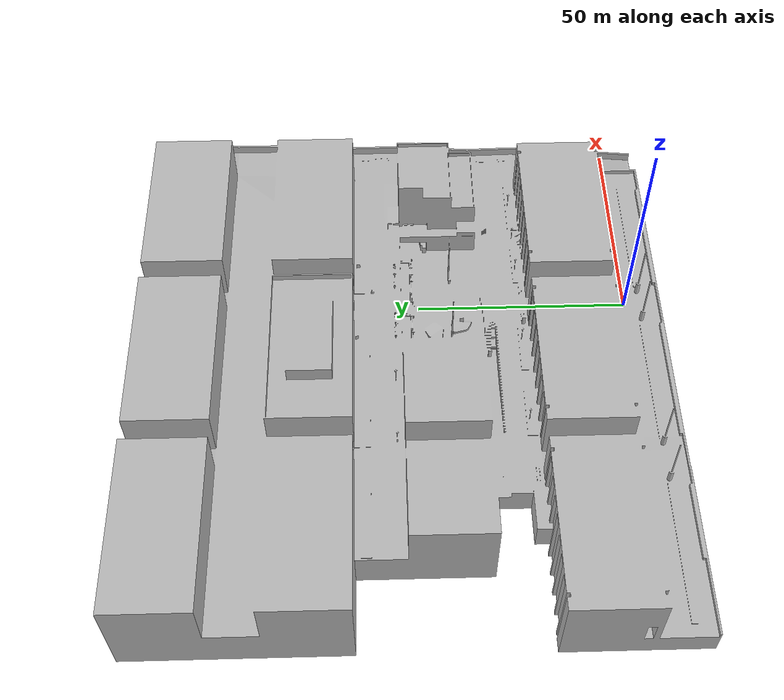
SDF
<?xml version="1.0" ?>
<sdf version="1.4">
  <world name="brl">
    <include>
      <uri>model://sun</uri>
    </include>
    <include>
      <uri>model://brl_big</uri>
      <name>brl_big</name>
      <pose>0 0 0 0 0 0</pose>
    </include>
  </world>
</sdf>

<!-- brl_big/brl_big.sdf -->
<sdf version="1.4">
  <model name="brl_big">
    <static>true</static>
    <link name="link">
      <pose>0 0 0 0 0 0</pose>
      <collision name="collision">
        <geometry>
          <mesh>
            <uri>model://brl_big/meshes/brl_big.stl</uri>
            <scale>1 1 1</scale>
          </mesh>
        </geometry>
      </collision>
      <visual name="visual">
        <geometry>
          <mesh>
            <uri>model://brl_big/meshes/brl_big.stl</uri>
            <scale>1 1 1</scale>
          </mesh>
        </geometry>
      </visual>
    </link>
  </model>
</sdf>
